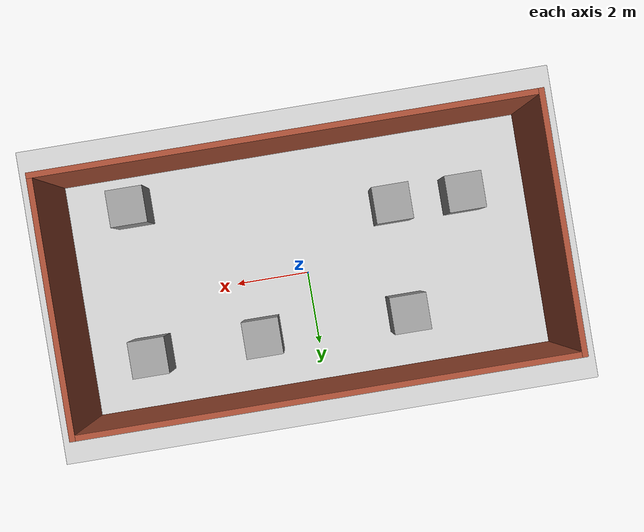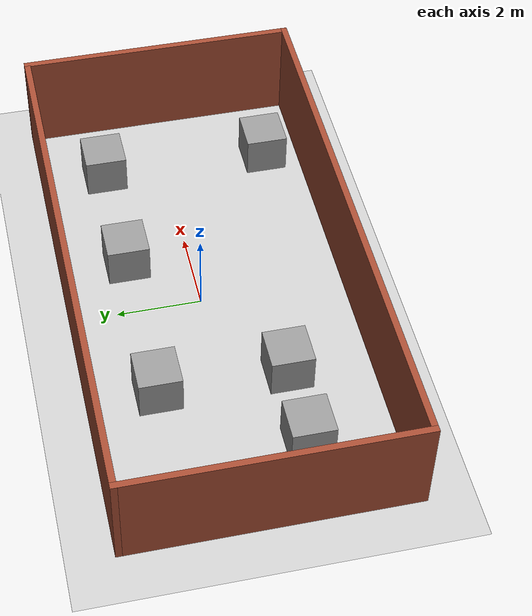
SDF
<sdf version="1.7">
 <world name="default">
  <light name="sun" type="directional">
   <pose>0 0 10 0 -0 0</pose>
   <diffuse>0.8 0.8 0.8 1</diffuse>
   <specular>0.2 0.2 0.2 1</specular>
   <attenuation>
    <range>1000</range>
    <constant>0.9</constant>
    <linear>0.01</linear>
    <quadratic>0.001</quadratic>
   </attenuation>
   <direction>-0.5 0.1 -0.9</direction>
   <spot><inner_angle>0</inner_angle><outer_angle>0</outer_angle><falloff>0</falloff></spot>
  </light>
  <model name="ground_plane">
   <static>1</static>
   <link name="link">
    <collision name="collision">
     <geometry><plane><normal>0 0 1</normal><size>100 100</size></plane></geometry>
     <surface>
      <contact><collide_bitmask>65535</collide_bitmask></contact>
      <friction><ode><mu>100</mu><mu2>50</mu2></ode></friction>
     </surface>
    </collision>
    <visual name="visual">
     <cast_shadows>0</cast_shadows>
     <geometry><plane><normal>0 0 1</normal><size>100 100</size></plane></geometry>
     <material>
      <script><uri>file://media/materials/scripts/gazebo.material</uri><name>Gazebo/Grey</name></script>
     </material>
    </visual>
   </link>
  </model>
  <gravity>0 0 -9.8</gravity>
  <magnetic_field>6e-06 2.3e-05 -4.2e-05</magnetic_field>
  <atmosphere type="adiabatic"/>
  <physics type="ode">
   <max_step_size>0.001</max_step_size>
   <real_time_factor>1</real_time_factor>
   <real_time_update_rate>1000</real_time_update_rate>
  </physics>
  <scene><ambient>0.4 0.4 0.4 1</ambient><background>0.7 0.7 0.7 1</background><shadows>1</shadows></scene>
  <spherical_coordinates>
   <surface_model>EARTH_WGS84</surface_model>
   <latitude_deg>0</latitude_deg>
   <longitude_deg>0</longitude_deg>
   <elevation>0</elevation>
   <heading_deg>0</heading_deg>
  </spherical_coordinates>
  <model name="Untitled">
   <link name="Wall_2">
    <collision name="Wall_2_Collision">
     <geometry><box><size>6.75 0.15 2.5</size></box></geometry>
     <pose>0 0 1.25 0 -0 0</pose>
    </collision>
    <visual name="Wall_2_Visual">
     <pose>0 0 1.25 0 -0 0</pose>
     <geometry><box><size>6.75 0.15 2.5</size></box></geometry>
     <material>
      <script><uri>file://media/materials/scripts/gazebo.material</uri><name>Gazebo/Bricks</name></script>
      <ambient>1 1 1 1</ambient>
     </material>
     <meta><layer>0</layer></meta>
    </visual>
    <pose>-6.425 -0.222534 0 0 -0 -1.5708</pose>
   </link>
   <link name="Wall_3">
    <collision name="Wall_3_Collision">
     <geometry><box><size>13 0.15 2.5</size></box></geometry>
     <pose>0 0 1.25 0 -0 0</pose>
    </collision>
    <visual name="Wall_3_Visual">
     <pose>0 0 1.25 0 -0 0</pose>
     <geometry><box><size>13 0.15 2.5</size></box></geometry>
     <material>
      <script><uri>file://media/materials/scripts/gazebo.material</uri><name>Gazebo/Bricks</name></script>
      <ambient>1 1 1 1</ambient>
     </material>
     <meta><layer>0</layer></meta>
    </visual>
    <pose>0 -3.52253 0 0 -0 0</pose>
   </link>
   <link name="Wall_4">
    <collision name="Wall_4_Collision">
     <geometry><box><size>6.75 0.15 2.5</size></box></geometry>
     <pose>0 0 1.25 0 -0 0</pose>
    </collision>
    <visual name="Wall_4_Visual">
     <pose>0 0 1.25 0 -0 0</pose>
     <geometry><box><size>6.75 0.15 2.5</size></box></geometry>
     <material>
      <script><uri>file://media/materials/scripts/gazebo.material</uri><name>Gazebo/Bricks</name></script>
      <ambient>1 1 1 1</ambient>
     </material>
     <meta><layer>0</layer></meta>
    </visual>
    <pose>6.425 -0.222534 0 0 -0 1.5708</pose>
   </link>
   <link name="Wall_5">
    <collision name="Wall_5_Collision">
     <geometry><box><size>13 0.15 2.5</size></box></geometry>
     <pose>0 0 1.25 0 -0 0</pose>
    </collision>
    <visual name="Wall_5_Visual">
     <pose>0 0 1.25 0 -0 0</pose>
     <geometry><box><size>13 0.15 2.5</size></box></geometry>
     <material>
      <script><uri>file://media/materials/scripts/gazebo.material</uri><name>Gazebo/Bricks</name></script>
      <ambient>1 1 1 1</ambient>
     </material>
     <meta><layer>0</layer></meta>
    </visual>
    <pose>0 3.07747 0 0 -0 3.14159</pose>
   </link>
   <static>1</static>
  </model>
  <model name="unit_box">
   <pose>-2.53092 -1.48668 0.5 0 -0 0</pose>
   <link name="link">
    <inertial>
     <mass>1</mass>
     <inertia>
      <ixx>0.166667</ixx>
      <ixy>0</ixy>
      <ixz>0</ixz>
      <iyy>0.166667</iyy>
      <iyz>0</iyz>
      <izz>0.166667</izz>
     </inertia>
    </inertial>
    <collision name="collision"><geometry><box><size>1 1 1</size></box></geometry></collision>
    <visual name="visual">
     <geometry><box><size>1 1 1</size></box></geometry>
     <material>
      <script><name>Gazebo/Grey</name><uri>file://media/materials/scripts/gazebo.material</uri></script>
     </material>
    </visual>
   </link>
  </model>
  <model name="unit_box_0">
   <pose>-2.52352 1.51297 0.5 -0 -0 -0</pose>
   <link name="link">
    <inertial>
     <mass>1</mass>
     <inertia>
      <ixx>0.166667</ixx>
      <ixy>0</ixy>
      <ixz>0</ixz>
      <iyy>0.166667</iyy>
      <iyz>0</iyz>
      <izz>0.166667</izz>
     </inertia>
    </inertial>
    <collision name="collision"><geometry><box><size>1 1 1</size></box></geometry></collision>
    <visual name="visual">
     <geometry><box><size>1 1 1</size></box></geometry>
     <material>
      <script><name>Gazebo/Grey</name><uri>file://media/materials/scripts/gazebo.material</uri></script>
     </material>
    </visual>
   </link>
  </model>
  <model name="unit_box_2">
   <pose>1.49695 1.51922 0.5 -0 -0 -0</pose>
   <link name="link">
    <inertial>
     <mass>1</mass>
     <inertia>
      <ixx>0.166667</ixx>
      <ixy>0</ixy>
      <ixz>0</ixz>
      <iyy>0.166667</iyy>
      <iyz>0</iyz>
      <izz>0.166667</izz>
     </inertia>
    </inertial>
    <collision name="collision"><geometry><box><size>1 1 1</size></box></geometry></collision>
    <visual name="visual">
     <geometry><box><size>1 1 1</size></box></geometry>
     <material>
      <script><name>Gazebo/Grey</name><uri>file://media/materials/scripts/gazebo.material</uri></script>
     </material>
    </visual>
   </link>
  </model>
  <model name="unit_box_3">
   <pose>4.5176 -2.553 0.5 0 -0 0</pose>
   <link name="link">
    <inertial>
     <mass>1</mass>
     <inertia>
      <ixx>0.166667</ixx>
      <ixy>0</ixy>
      <ixz>0</ixz>
      <iyy>0.166667</iyy>
      <iyz>0</iyz>
      <izz>0.166667</izz>
     </inertia>
    </inertial>
    <collision name="collision"><geometry><box><size>1 1 1</size></box></geometry></collision>
    <visual name="visual">
     <geometry><box><size>1 1 1</size></box></geometry>
     <material>
      <script><name>Gazebo/Grey</name><uri>file://media/materials/scripts/gazebo.material</uri></script>
     </material>
    </visual>
   </link>
  </model>
  <model name="unit_box_4">
   <pose>-4.50289 -1.46591 0.5 -0 -0 -0</pose>
   <link name="link">
    <inertial>
     <mass>1</mass>
     <inertia>
      <ixx>0.166667</ixx>
      <ixy>0</ixy>
      <ixz>0</ixz>
      <iyy>0.166667</iyy>
      <iyz>0</iyz>
      <izz>0.166667</izz>
     </inertia>
    </inertial>
    <collision name="collision"><geometry><box><size>1 1 1</size></box></geometry></collision>
    <visual name="visual">
     <geometry><box><size>1 1 1</size></box></geometry>
     <material>
      <script><name>Gazebo/Grey</name><uri>file://media/materials/scripts/gazebo.material</uri></script>
     </material>
    </visual>
   </link>
  </model>
  <model name="unit_box_5">
   <pose>4.59093 1.54265 0.5 0 -0 0</pose>
   <link name="link">
    <inertial>
     <mass>1</mass>
     <inertia>
      <ixx>0.166667</ixx>
      <ixy>0</ixy>
      <ixz>0</ixz>
      <iyy>0.166667</iyy>
      <iyz>0</iyz>
      <izz>0.166667</izz>
     </inertia>
    </inertial>
    <collision name="collision"><geometry><box><size>1 1 1</size></box></geometry></collision>
    <visual name="visual">
     <geometry><box><size>1 1 1</size></box></geometry>
     <material>
      <script><name>Gazebo/Grey</name><uri>file://media/materials/scripts/gazebo.material</uri></script>
     </material>
    </visual>
   </link>
  </model>
 </world>
</sdf>
